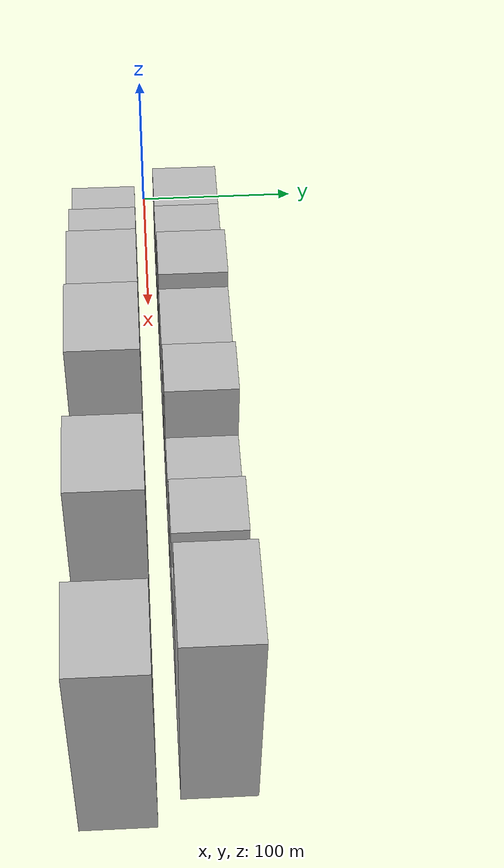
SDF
<sdf version="1.6">
 <world name="default">
  <scene>
   <sky><clouds><speed>12</speed></clouds></sky>
   <ambient>0.4 0.4 0.4 1</ambient>
   <background>0.7 0.7 0.7 1</background>
   <shadows>1</shadows>
  </scene>
  <gravity>0 0 -9.8066</gravity>
  <magnetic_field>6e-06 2.3e-05 -4.2e-05</magnetic_field>
  <physics default="0" name="default_physics" type="ode">
   <ode>
    <solver>
     <type>quick</type>
     <iters>10</iters>
     <sor>1.0</sor>
     <use_dynamic_moi_rescaling>0</use_dynamic_moi_rescaling>
    </solver>
    <constraints>
     <cfm>0</cfm>
     <erp>0.2</erp>
     <contact_max_correcting_vel>100</contact_max_correcting_vel>
     <contact_surface_layer>0.001</contact_surface_layer>
    </constraints>
   </ode>
   <max_step_size>0.004</max_step_size>
   <real_time_factor>1</real_time_factor>
   <real_time_update_rate>250</real_time_update_rate>
  </physics>
  <light name="sun" type="directional">
   <pose>0 0 10 0 0 0</pose>
   <diffuse>0.8 0.8 0.8 1</diffuse>
   <specular>0.2 0.2 0.2 1</specular>
   <attenuation>
    <range>1000</range>
    <constant>0.9</constant>
    <linear>0.01</linear>
    <quadratic>0.001</quadratic>
   </attenuation>
   <direction>-0.5 0.1 -0.9</direction>
  </light>
  <model name="building_1">
   <static>1</static>
   <pose>60.3415 26.0000 0 0.000000 0.000000 1.570796</pose>
   <link name="link">
    <pose>0 0 33.00 0 0 0</pose>
    <collision name="collision"><geometry><box><size>40.0000 34.6831 66.0000</size></box></geometry></collision>
    <visual name="visual">
     <cast_shadows>0</cast_shadows>
     <geometry><box><size>40.0000 34.6831 66.0000</size></box></geometry>
     <material>
      <script>
       <uri>model://HANNAS_wall/materials/scripts</uri>
       <uri>model://HANNAS_wall/materials/textures</uri>
       <name>vrc/HANNAS_wall</name>
      </script>
     </material>
    </visual>
   </link>
  </model>
  <model name="building_2">
   <static>1</static>
   <pose>94.6761 26.0000 0 0.000000 0.000000 1.570796</pose>
   <link name="link">
    <pose>0 0 33.00 0 0 0</pose>
    <collision name="collision"><geometry><box><size>40.0000 33.9861 66.0000</size></box></geometry></collision>
    <visual name="visual">
     <cast_shadows>0</cast_shadows>
     <geometry><box><size>40.0000 33.9861 66.0000</size></box></geometry>
     <material>
      <script>
       <uri>model://HANNAS_wall/materials/scripts</uri>
       <uri>model://HANNAS_wall/materials/textures</uri>
       <name>vrc/HANNAS_wall</name>
      </script>
     </material>
    </visual>
   </link>
  </model>
  <model name="building_3">
   <static>1</static>
   <pose>124.8707 26.0000 0 0.000000 0.000000 1.570796</pose>
   <link name="link">
    <pose>0 0 22.50 0 0 0</pose>
    <collision name="collision"><geometry><box><size>40.0000 26.4030 45.0000</size></box></geometry></collision>
    <visual name="visual">
     <cast_shadows>0</cast_shadows>
     <geometry><box><size>40.0000 26.4030 45.0000</size></box></geometry>
     <material>
      <script>
       <uri>model://HANNAS_wall/materials/scripts</uri>
       <uri>model://HANNAS_wall/materials/textures</uri>
       <name>vrc/HANNAS_wall</name>
      </script>
     </material>
    </visual>
   </link>
  </model>
  <model name="building_4">
   <static>1</static>
   <pose>155.4970 26.0000 0 0.000000 0.000000 1.570796</pose>
   <link name="link">
    <pose>0 0 51.00 0 0 0</pose>
    <collision name="collision"><geometry><box><size>40.0000 34.8496 102.0000</size></box></geometry></collision>
    <visual name="visual">
     <cast_shadows>0</cast_shadows>
     <geometry><box><size>40.0000 34.8496 102.0000</size></box></geometry>
     <material>
      <script>
       <uri>model://HANNAS_wall/materials/scripts</uri>
       <uri>model://HANNAS_wall/materials/textures</uri>
       <name>vrc/HANNAS_wall</name>
      </script>
     </material>
    </visual>
   </link>
  </model>
  <model name="building_5">
   <static>1</static>
   <pose>198.7369 26.0000 0 0.000000 0.000000 1.570796</pose>
   <link name="link">
    <pose>0 0 45.00 0 0 0</pose>
    <collision name="collision"><geometry><box><size>40.0000 51.6303 90.0000</size></box></geometry></collision>
    <visual name="visual">
     <cast_shadows>0</cast_shadows>
     <geometry><box><size>40.0000 51.6303 90.0000</size></box></geometry>
     <material>
      <script>
       <uri>model://HANNAS_wall/materials/scripts</uri>
       <uri>model://HANNAS_wall/materials/textures</uri>
       <name>vrc/HANNAS_wall</name>
      </script>
     </material>
    </visual>
   </link>
  </model>
  <model name="building_6">
   <static>1</static>
   <pose>229.6008 26.0000 0 0.000000 0.000000 1.570796</pose>
   <link name="link">
    <pose>0 0 10.50 0 0 0</pose>
    <collision name="collision"><geometry><box><size>40.0000 10.0975 21.0000</size></box></geometry></collision>
    <visual name="visual">
     <cast_shadows>0</cast_shadows>
     <geometry><box><size>40.0000 10.0975 21.0000</size></box></geometry>
     <material>
      <script>
       <uri>model://HANNAS_wall/materials/scripts</uri>
       <uri>model://HANNAS_wall/materials/textures</uri>
       <name>vrc/HANNAS_wall</name>
      </script>
     </material>
    </visual>
   </link>
  </model>
  <model name="building_7">
   <static>1</static>
   <pose>251.5082 26.0000 0 0.000000 0.000000 1.570796</pose>
   <link name="link">
    <pose>0 0 55.50 0 0 0</pose>
    <collision name="collision"><geometry><box><size>40.0000 33.7172 111.0000</size></box></geometry></collision>
    <visual name="visual">
     <cast_shadows>0</cast_shadows>
     <geometry><box><size>40.0000 33.7172 111.0000</size></box></geometry>
     <material>
      <script>
       <uri>model://HANNAS_wall/materials/scripts</uri>
       <uri>model://HANNAS_wall/materials/textures</uri>
       <name>vrc/HANNAS_wall</name>
      </script>
     </material>
    </visual>
   </link>
  </model>
  <model name="building_8">
   <static>1</static>
   <pose>289.7800 26.0000 0 0.000000 0.000000 1.570796</pose>
   <link name="link">
    <pose>0 0 36.00 0 0 0</pose>
    <collision name="collision"><geometry><box><size>40.0000 42.8265 72.0000</size></box></geometry></collision>
    <visual name="visual">
     <cast_shadows>0</cast_shadows>
     <geometry><box><size>40.0000 42.8265 72.0000</size></box></geometry>
     <material>
      <script>
       <uri>model://HANNAS_wall/materials/scripts</uri>
       <uri>model://HANNAS_wall/materials/textures</uri>
       <name>vrc/HANNAS_wall</name>
      </script>
     </material>
    </visual>
   </link>
  </model>
  <model name="building_9">
   <static>1</static>
   <pose>334.2453 26.0000 0 0.000000 0.000000 1.570796</pose>
   <link name="link">
    <pose>0 0 49.50 0 0 0</pose>
    <collision name="collision"><geometry><box><size>40.0000 34.1040 99.0000</size></box></geometry></collision>
    <visual name="visual">
     <cast_shadows>0</cast_shadows>
     <geometry><box><size>40.0000 34.1040 99.0000</size></box></geometry>
     <material>
      <script>
       <uri>model://HANNAS_wall/materials/scripts</uri>
       <uri>model://HANNAS_wall/materials/textures</uri>
       <name>vrc/HANNAS_wall</name>
      </script>
     </material>
    </visual>
   </link>
  </model>
  <model name="building_10">
   <static>1</static>
   <pose>370.8113 26.0000 0 0.000000 0.000000 1.570796</pose>
   <link name="link">
    <pose>0 0 34.50 0 0 0</pose>
    <collision name="collision"><geometry><box><size>40.0000 39.0281 69.0000</size></box></geometry></collision>
    <visual name="visual">
     <cast_shadows>0</cast_shadows>
     <geometry><box><size>40.0000 39.0281 69.0000</size></box></geometry>
     <material>
      <script>
       <uri>model://HANNAS_wall/materials/scripts</uri>
       <uri>model://HANNAS_wall/materials/textures</uri>
       <name>vrc/HANNAS_wall</name>
      </script>
     </material>
    </visual>
   </link>
  </model>
  <model name="building_11">
   <static>1</static>
   <pose>418.6426 26.0000 0 0.000000 0.000000 1.570796</pose>
   <link name="link">
    <pose>0 0 73.50 0 0 0</pose>
    <collision name="collision"><geometry><box><size>40.0000 56.6345 147.0000</size></box></geometry></collision>
    <visual name="visual">
     <cast_shadows>0</cast_shadows>
     <geometry><box><size>40.0000 56.6345 147.0000</size></box></geometry>
     <material>
      <script>
       <uri>model://HANNAS_wall/materials/scripts</uri>
       <uri>model://HANNAS_wall/materials/textures</uri>
       <name>vrc/HANNAS_wall</name>
      </script>
     </material>
    </visual>
   </link>
  </model>
  <model name="building_12">
   <static>1</static>
   <pose>59.5585 -26.0000 0 0.000000 0.000000 1.570796</pose>
   <link name="link">
    <pose>0 0 27.00 0 0 0</pose>
    <collision name="collision"><geometry><box><size>40.0000 27.1169 54.0000</size></box></geometry></collision>
    <visual name="visual">
     <cast_shadows>0</cast_shadows>
     <geometry><box><size>40.0000 27.1169 54.0000</size></box></geometry>
     <material>
      <script>
       <uri>model://HANNAS_wall/materials/scripts</uri>
       <uri>model://HANNAS_wall/materials/textures</uri>
       <name>vrc/HANNAS_wall</name>
      </script>
     </material>
    </visual>
   </link>
  </model>
  <model name="building_13">
   <static>1</static>
   <pose>82.3201 -26.0000 0 0.000000 0.000000 1.570796</pose>
   <link name="link">
    <pose>0 0 18.00 0 0 0</pose>
    <collision name="collision"><geometry><box><size>40.0000 18.4063 36.0000</size></box></geometry></collision>
    <visual name="visual">
     <cast_shadows>0</cast_shadows>
     <geometry><box><size>40.0000 18.4063 36.0000</size></box></geometry>
     <material>
      <script>
       <uri>model://HANNAS_wall/materials/scripts</uri>
       <uri>model://HANNAS_wall/materials/textures</uri>
       <name>vrc/HANNAS_wall</name>
      </script>
     </material>
    </visual>
   </link>
  </model>
  <model name="building_14">
   <static>1</static>
   <pose>122.3119 -26.0000 0 0.000000 0.000000 1.570796</pose>
   <link name="link">
    <pose>0 0 43.50 0 0 0</pose>
    <collision name="collision"><geometry><box><size>40.0000 43.5773 87.0000</size></box></geometry></collision>
    <visual name="visual">
     <cast_shadows>0</cast_shadows>
     <geometry><box><size>40.0000 43.5773 87.0000</size></box></geometry>
     <material>
      <script>
       <uri>model://HANNAS_wall/materials/scripts</uri>
       <uri>model://HANNAS_wall/materials/textures</uri>
       <name>vrc/HANNAS_wall</name>
      </script>
     </material>
    </visual>
   </link>
  </model>
  <model name="building_15">
   <static>1</static>
   <pose>165.6549 -26.0000 0 0.000000 0.000000 1.570796</pose>
   <link name="link">
    <pose>0 0 55.50 0 0 0</pose>
    <collision name="collision"><geometry><box><size>40.0000 43.1087 111.0000</size></box></geometry></collision>
    <visual name="visual">
     <cast_shadows>0</cast_shadows>
     <geometry><box><size>40.0000 43.1087 111.0000</size></box></geometry>
     <material>
      <script>
       <uri>model://HANNAS_wall/materials/scripts</uri>
       <uri>model://HANNAS_wall/materials/textures</uri>
       <name>vrc/HANNAS_wall</name>
      </script>
     </material>
    </visual>
   </link>
  </model>
  <model name="building_16">
   <static>1</static>
   <pose>198.5516 -26.0000 0 0.000000 0.000000 1.570796</pose>
   <link name="link">
    <pose>0 0 15.00 0 0 0</pose>
    <collision name="collision"><geometry><box><size>40.0000 16.6847 30.0000</size></box></geometry></collision>
    <visual name="visual">
     <cast_shadows>0</cast_shadows>
     <geometry><box><size>40.0000 16.6847 30.0000</size></box></geometry>
     <material>
      <script>
       <uri>model://HANNAS_wall/materials/scripts</uri>
       <uri>model://HANNAS_wall/materials/textures</uri>
       <name>vrc/HANNAS_wall</name>
      </script>
     </material>
    </visual>
   </link>
  </model>
  <model name="building_17">
   <static>1</static>
   <pose>231.5147 -26.0000 0 0.000000 0.000000 1.570796</pose>
   <link name="link">
    <pose>0 0 66.00 0 0 0</pose>
    <collision name="collision"><geometry><box><size>40.0000 49.2415 132.0000</size></box></geometry></collision>
    <visual name="visual">
     <cast_shadows>0</cast_shadows>
     <geometry><box><size>40.0000 49.2415 132.0000</size></box></geometry>
     <material>
      <script>
       <uri>model://HANNAS_wall/materials/scripts</uri>
       <uri>model://HANNAS_wall/materials/textures</uri>
       <name>vrc/HANNAS_wall</name>
      </script>
     </material>
    </visual>
   </link>
  </model>
  <model name="building_18">
   <static>1</static>
   <pose>277.8617 -26.0000 0 0.000000 0.000000 1.570796</pose>
   <link name="link">
    <pose>0 0 37.50 0 0 0</pose>
    <collision name="collision"><geometry><box><size>40.0000 43.4525 75.0000</size></box></geometry></collision>
    <visual name="visual">
     <cast_shadows>0</cast_shadows>
     <geometry><box><size>40.0000 43.4525 75.0000</size></box></geometry>
     <material>
      <script>
       <uri>model://HANNAS_wall/materials/scripts</uri>
       <uri>model://HANNAS_wall/materials/textures</uri>
       <name>vrc/HANNAS_wall</name>
      </script>
     </material>
    </visual>
   </link>
  </model>
  <model name="building_19">
   <static>1</static>
   <pose>304.5380 -26.0000 0 0.000000 0.000000 1.570796</pose>
   <link name="link">
    <pose>0 0 10.50 0 0 0</pose>
    <collision name="collision"><geometry><box><size>40.0000 9.9000 21.0000</size></box></geometry></collision>
    <visual name="visual">
     <cast_shadows>0</cast_shadows>
     <geometry><box><size>40.0000 9.9000 21.0000</size></box></geometry>
     <material>
      <script>
       <uri>model://HANNAS_wall/materials/scripts</uri>
       <uri>model://HANNAS_wall/materials/textures</uri>
       <name>vrc/HANNAS_wall</name>
      </script>
     </material>
    </visual>
   </link>
  </model>
  <model name="building_20">
   <static>1</static>
   <pose>333.2238 -26.0000 0 0.000000 0.000000 1.570796</pose>
   <link name="link">
    <pose>0 0 72.00 0 0 0</pose>
    <collision name="collision"><geometry><box><size>40.0000 47.4717 144.0000</size></box></geometry></collision>
    <visual name="visual">
     <cast_shadows>0</cast_shadows>
     <geometry><box><size>40.0000 47.4717 144.0000</size></box></geometry>
     <material>
      <script>
       <uri>model://HANNAS_wall/materials/scripts</uri>
       <uri>model://HANNAS_wall/materials/textures</uri>
       <name>vrc/HANNAS_wall</name>
      </script>
     </material>
    </visual>
   </link>
  </model>
  <model name="building_21">
   <static>1</static>
   <pose>361.7968 -26.0000 0 0.000000 0.000000 1.570796</pose>
   <link name="link">
    <pose>0 0 10.50 0 0 0</pose>
    <collision name="collision"><geometry><box><size>40.0000 9.6743 21.0000</size></box></geometry></collision>
    <visual name="visual">
     <cast_shadows>0</cast_shadows>
     <geometry><box><size>40.0000 9.6743 21.0000</size></box></geometry>
     <material>
      <script>
       <uri>model://HANNAS_wall/materials/scripts</uri>
       <uri>model://HANNAS_wall/materials/textures</uri>
       <name>vrc/HANNAS_wall</name>
      </script>
     </material>
    </visual>
   </link>
  </model>
  <model name="building_22">
   <static>1</static>
   <pose>391.6307 -26.0000 0 0.000000 0.000000 1.570796</pose>
   <link name="link">
    <pose>0 0 34.50 0 0 0</pose>
    <collision name="collision"><geometry><box><size>40.0000 39.9936 69.0000</size></box></geometry></collision>
    <visual name="visual">
     <cast_shadows>0</cast_shadows>
     <geometry><box><size>40.0000 39.9936 69.0000</size></box></geometry>
     <material>
      <script>
       <uri>model://HANNAS_wall/materials/scripts</uri>
       <uri>model://HANNAS_wall/materials/textures</uri>
       <name>vrc/HANNAS_wall</name>
      </script>
     </material>
    </visual>
   </link>
  </model>
  <model name="building_23">
   <static>1</static>
   <pose>436.6211 -26.0000 0 0.000000 0.000000 1.570796</pose>
   <link name="link">
    <pose>0 0 75.00 0 0 0</pose>
    <collision name="collision"><geometry><box><size>40.0000 49.9873 150.0000</size></box></geometry></collision>
    <visual name="visual">
     <cast_shadows>0</cast_shadows>
     <geometry><box><size>40.0000 49.9873 150.0000</size></box></geometry>
     <material>
      <script>
       <uri>model://HANNAS_wall/materials/scripts</uri>
       <uri>model://HANNAS_wall/materials/textures</uri>
       <name>vrc/HANNAS_wall</name>
      </script>
     </material>
    </visual>
   </link>
  </model>
 </world>
</sdf>
